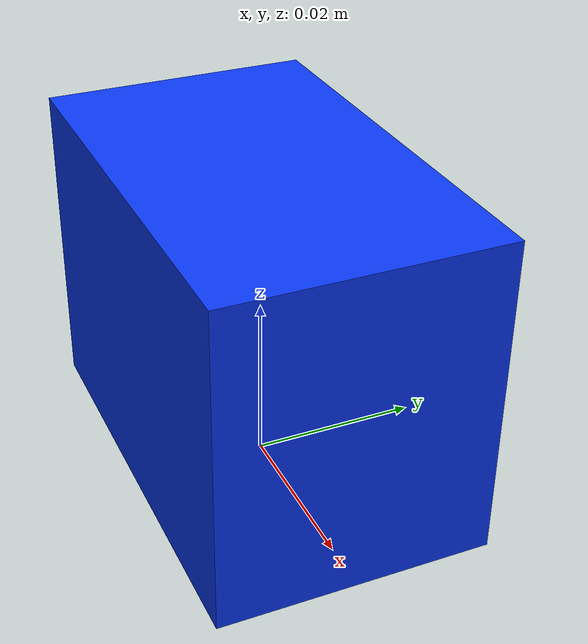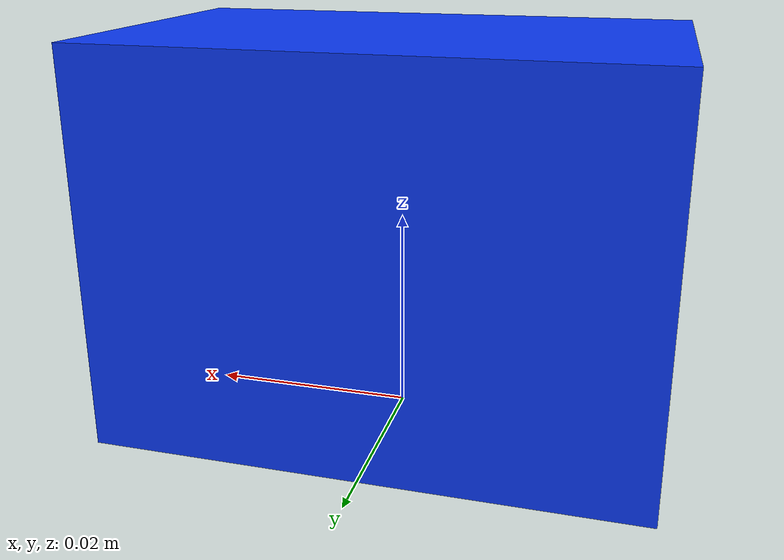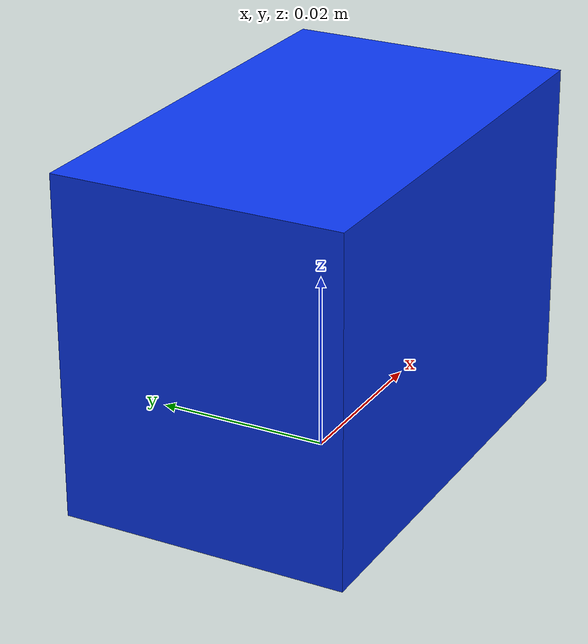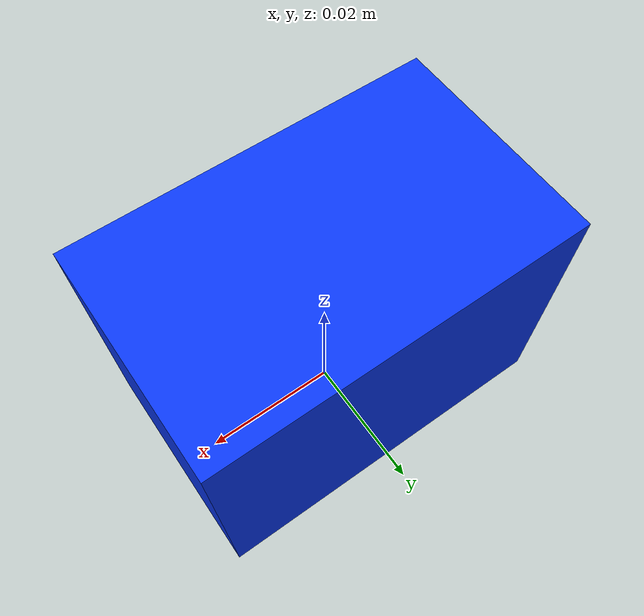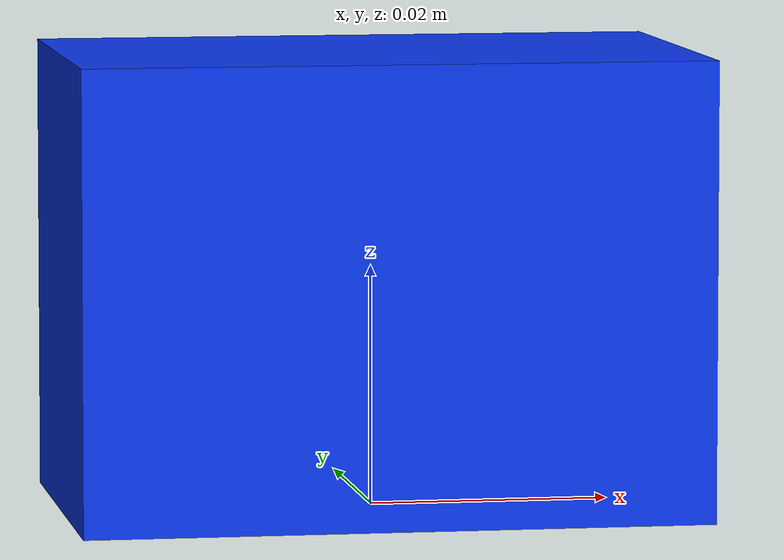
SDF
<?xml version="1.0"?>
<sdf version="1.9"><model name="rebotarm_blue_block"><link name="body">
  <inertial><mass>0.05</mass><inertia><ixx>0.00001028</ixx><iyy>0.00001728</iyy><izz>0.00001553</izz></inertia></inertial>
  <collision name="collision"><pose>0 0 0.019 0 0 0</pose><geometry><box><size>0.052 0.032 0.038</size></box></geometry><surface><friction><ode><mu>2</mu><mu2>2</mu2></ode></friction></surface></collision>
  <visual name="visual"><pose>0 0 0.019 0 0 0</pose><geometry><box><size>0.052 0.032 0.038</size></box></geometry><material><ambient>0.02 0.10 0.75 1</ambient><diffuse>0.04 0.22 0.95 1</diffuse></material></visual>
</link></model></sdf>
